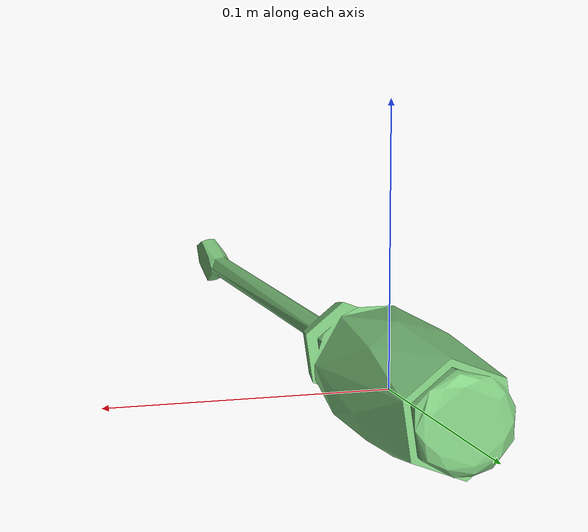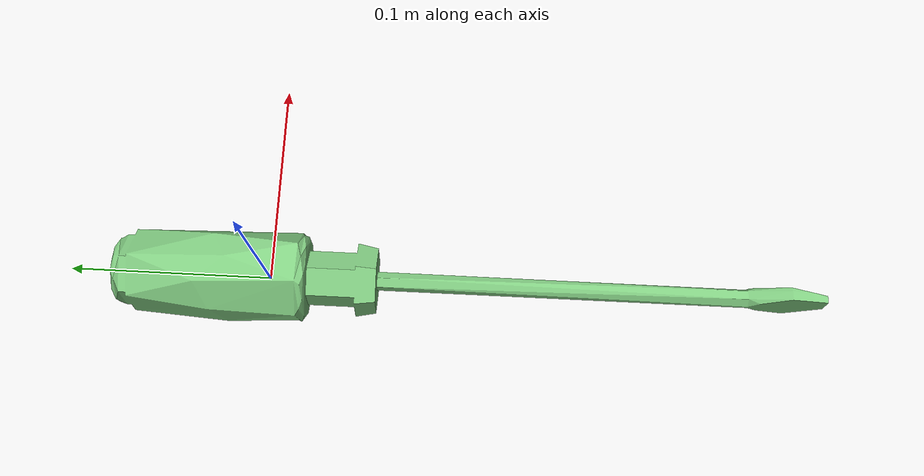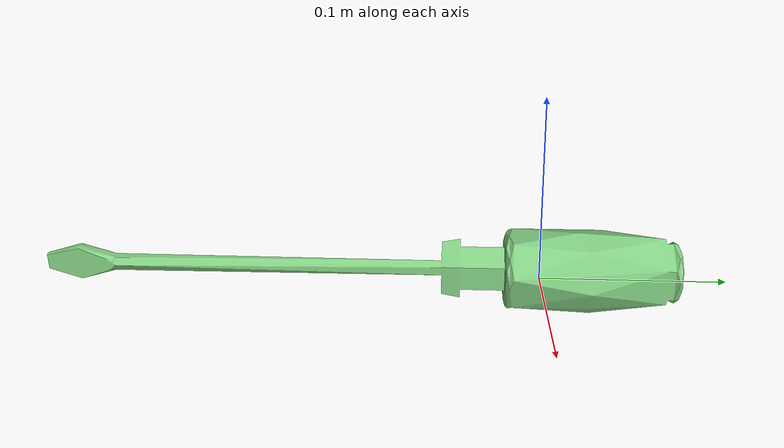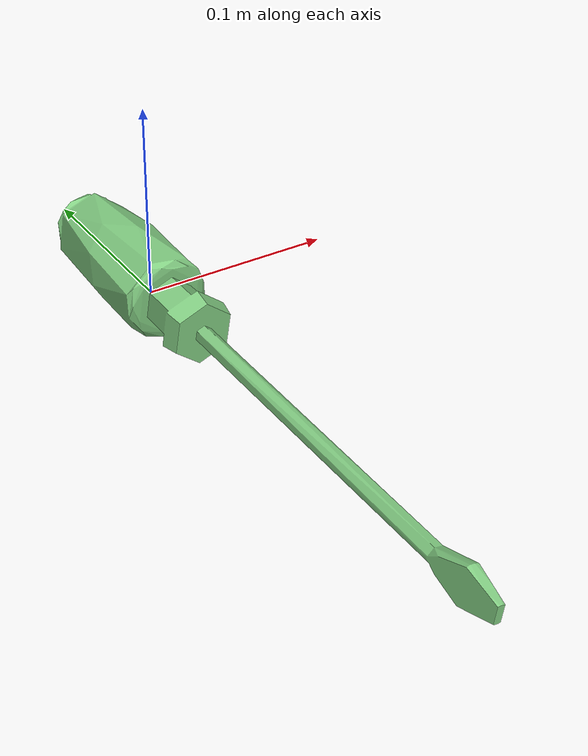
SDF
<sdf version="1.6">
  <model name="screwdriver2_0">
    <link name="link">
      <pose frame="">-0 0 0.005 0 -0 0</pose>
      <inertial>
        <mass>0.5</mass>
        <inertia>
          <ixx>0.005111355694833083</ixx>
          <ixy>0</ixy>
          <ixz>0</ixz>
          <iyy>0.005111957523007055</iyy>
          <iyz>0</iyz>
          <izz>0.00016538956388010415</izz>
        </inertia>
        <pose frame="">-0.00014111499999999776 -0.09891255000000003 0.0002565600000000023 1.57 0 3.14</pose>
      </inertial>
      <self_collide>0</self_collide>
      <kinematic>0</kinematic>
      <gravity>1</gravity>
      <visual name="visual">
        <geometry>
          <mesh>
            <uri>/home/zisu/simulator/siemens_challenge/sim_world/toolbox/screwdriver2_0.dae</uri>
          </mesh>
        </geometry>
        <pose frame="">0 0 0 0 -0 0</pose>
        <transparency>0</transparency>
        <cast_shadows>0</cast_shadows>
      </visual>
      <collision name="collision">
        <laser_retro>0</laser_retro>
        <max_contacts>10</max_contacts>
        <pose frame="">-0.00014111499999999776 -0.09891255000000003 0.0002565600000000023 1.57 0 3.14</pose>
        <geometry>
          <box>
            <size>0.04463067 0.044468560000000004 0.34741198</size>
          </box>
        </geometry>
        <surface>
          <friction>
            <ode>
              <mu>1</mu>
              <mu2>1</mu2>
              <fdir1>0 0 0</fdir1>
              <slip1>0</slip1>
              <slip2>0</slip2>
            </ode>
            <torsional>
              <coefficient>1</coefficient>
              <patch_radius>0</patch_radius>
              <surface_radius>0.05</surface_radius>
              <use_patch_radius>0</use_patch_radius>
              <ode>
                <slip>0</slip>
              </ode>
            </torsional>
          </friction>
          <bounce>
            <restitution_coefficient>0</restitution_coefficient>
            <threshold>1e+06</threshold>
          </bounce>
          <contact>
            <collide_without_contact>0</collide_without_contact>
            <collide_without_contact_bitmask>1</collide_without_contact_bitmask>
            <collide_bitmask>1</collide_bitmask>
            <ode>
              <soft_cfm>0</soft_cfm>
              <soft_erp>0.2</soft_erp>
              <kp>100000</kp>
              <kd>1</kd>
              <max_vel>1</max_vel>
              <min_depth>0.001</min_depth>
            </ode>
            <bullet>
              <split_impulse>1</split_impulse>
              <split_impulse_penetration_threshold>-0.01</split_impulse_penetration_threshold>
              <soft_cfm>0</soft_cfm>
              <soft_erp>0.2</soft_erp>
              <kp>100000</kp>
              <kd>1</kd>
            </bullet>
          </contact>
        </surface>
      </collision>
    </link>
    <static>0</static>
    <allow_auto_disable>1</allow_auto_disable>
  </model>
</sdf>
